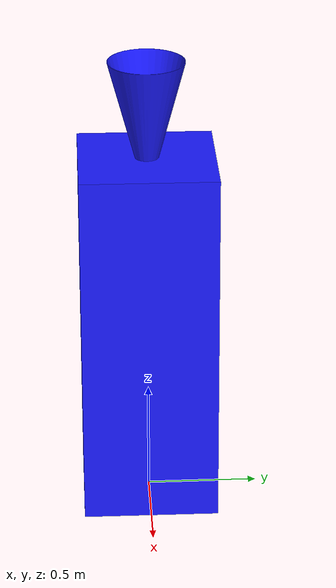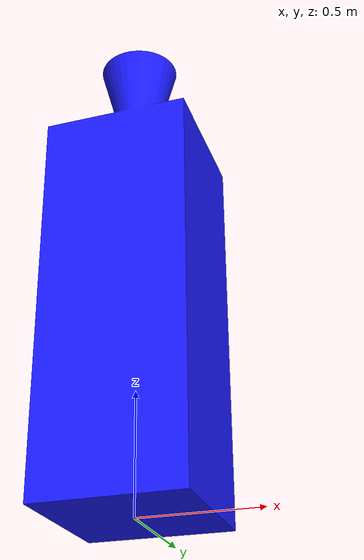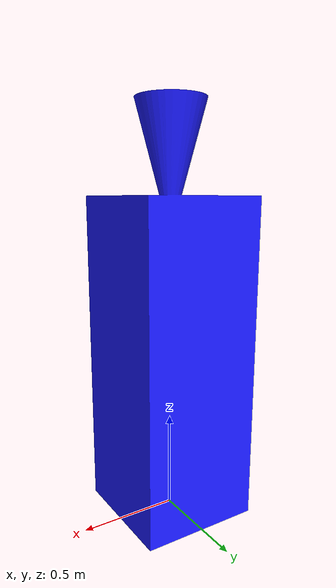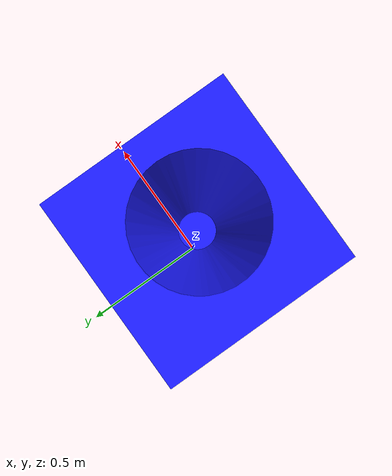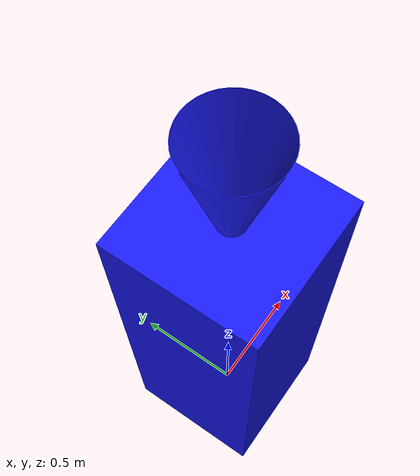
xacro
<?xml version="1.0"?>
<robot name="hopper_short" xmlns:xacro="http://wiki.ros.org/xacro">
  <xacro:include filename="$(find hopper_short)/urdf/hopper_short_macro.xacro"/>
  <xacro:hopper_short prefix=""/>

  <xacro:property name="h_offset" value="0.1" />
  <xacro:property name="h_hopper" value="2.0828" /> <!-- 82 inch = 2.0828 m -->
  <xacro:property name="r_hopper" value="0.25" />
  <xacro:property name="theta" value="${-45.0/180.0*pi}" /> <!-- rotation around z axis angle (rad)  -->

  <!-- Pouring point xyz -->
  <xacro:property name="x_pouring_point" value="${r_hopper * cos(theta)}" />
  <xacro:property name="y_pouring_point" value="${r_hopper * sin(theta)}" />
  <xacro:property name="z_pouring_point" value="${h_hopper + h_offset}" />

  <!-- Pouring point RPY -->
  <xacro:property name="R_pouring_point" value="${90.0/180.0*pi}" />
  <xacro:property name="P_pouring_point" value="${0.0/180.0*pi}" />
  <xacro:property name="Y_pouring_point" value="${theta}" />

  <link name="hopper_short_base_plate">
  </link>

  <link name="hopper_short_pouring_point">
  </link>

  <joint name="hopper_short_base_plate" type="fixed">
    <parent link="hopper_short_base_plate"/>
    <child link="hopper_short_base_link"/>
    <origin rpy="0 0 0" xyz="0 0 0"/>
  </joint>

  <joint name="hopper_short_pouring_point" type="fixed">
    <parent link="hopper_short_base_link"/>
    <child link="hopper_short_pouring_point"/>
    <origin xyz="${x_pouring_point} ${y_pouring_point} ${z_pouring_point}" rpy="${R_pouring_point} ${P_pouring_point} ${Y_pouring_point}"/>
  </joint>

</robot>

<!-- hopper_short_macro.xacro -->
<robot xmlns:xacro="http://wiki.ros.org/xacro">

  <xacro:macro name="hopper_short" params="prefix">

    <link name="${prefix}hopper_short_base_link">
      <inertial>
      <origin
        xyz="0 -2.2204E-16 0.82202"
        rpy="0 0 0" />
      <mass
        value="610.69" />
      <inertia
        ixx="155.79"
        ixy="9.8978E-32"
        ixz="7.2728E-19"
        iyy="155.79"
        iyz="-4.5124E-15"
        izz="37.786" />
    </inertial>
    <visual>
      <origin
        xyz="0 0 0"
        rpy="0 0 0" />
      <geometry>
        <mesh
          filename="package://hopper_short/meshes/base_link.STL" />
      </geometry>
      <material
        name="">
        <color
          rgba="0.1 0.1 1 1" />
      </material>
    </visual>
    <collision>
      <origin
        xyz="0 0 0"
        rpy="0 0 0" />
      <geometry>
        <mesh
          filename="package://hopper_short/meshes/base_link.STL" />
      </geometry>
    </collision>
    </link>

  </xacro:macro>

</robot>
